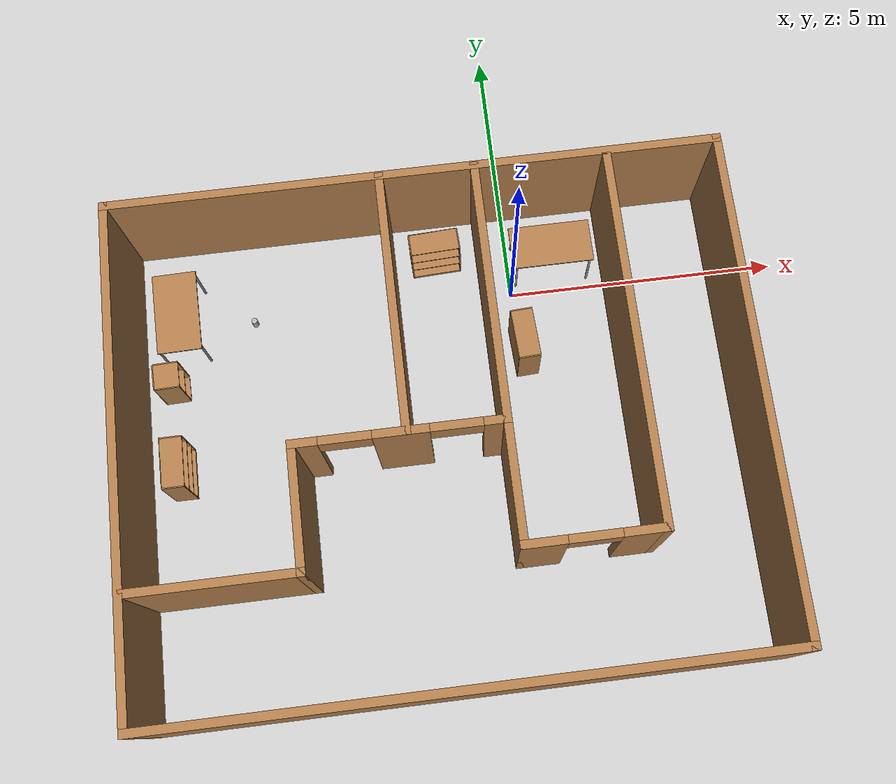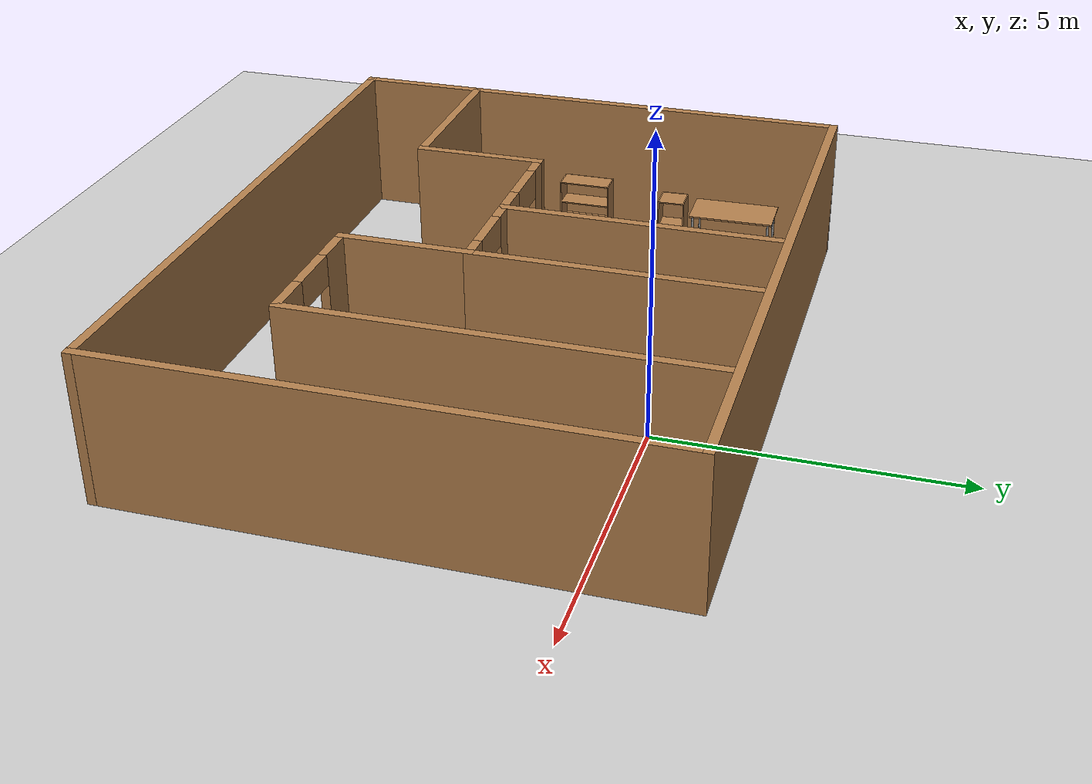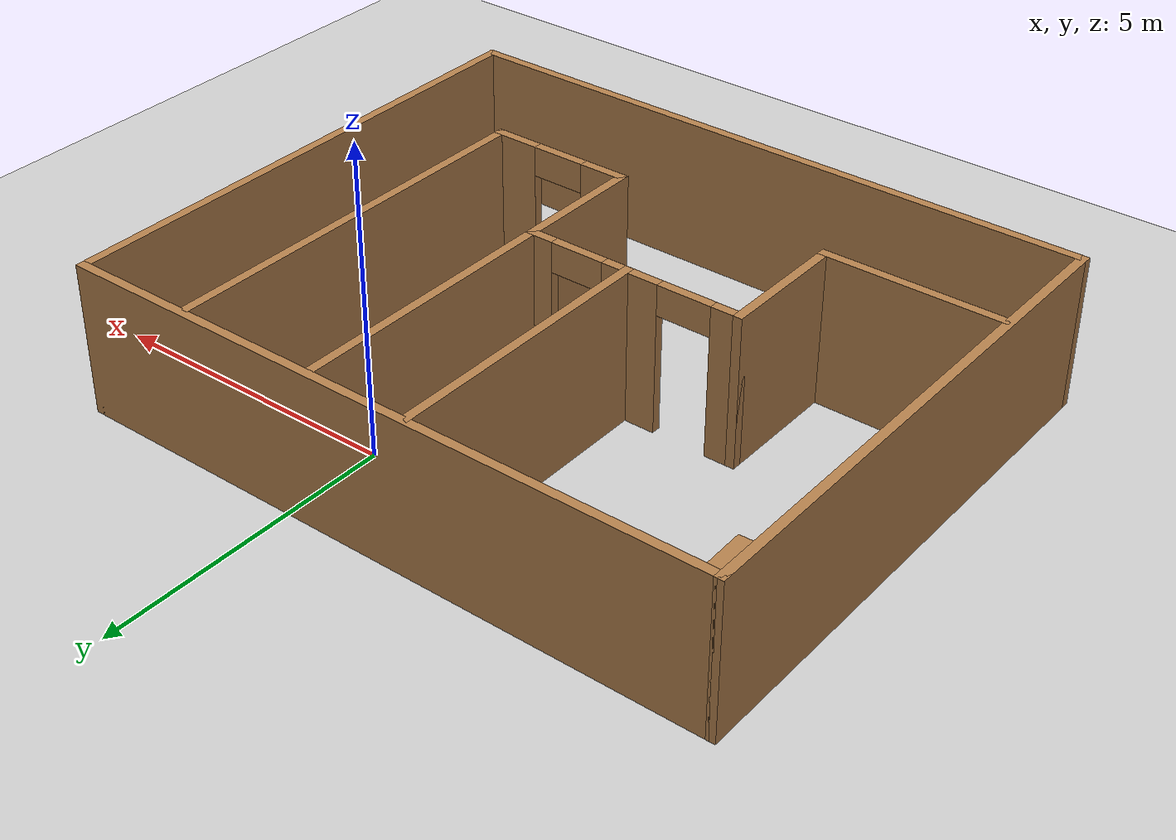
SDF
<sdf version="1.6">
 <world name="default">
  <model name="ground_plane">
   <static>1</static>
   <link name="link">
    <collision name="collision">
     <geometry><plane><normal>0 0 1</normal><size>100 100</size></plane></geometry>
     <surface>
      <contact><collide_bitmask>65535</collide_bitmask></contact>
      <friction><ode><mu>100</mu><mu2>50</mu2></ode></friction>
     </surface>
    </collision>
    <visual name="visual">
     <cast_shadows>0</cast_shadows>
     <geometry><plane><normal>0 0 1</normal><size>100 100</size></plane></geometry>
     <material>
      <script><uri>file://media/materials/scripts/gazebo.material</uri><name>Gazebo/Grey</name></script>
     </material>
    </visual>
   </link>
  </model>
  <model name="Building">
   <pose>-1.60154 -2.77516 0 0 -0 0</pose>
   <link name="Wall_0">
    <collision name="Wall_0_Collision">
     <geometry><box><size>9 0.15 2.5</size></box></geometry>
     <pose>0 0 1.25 0 -0 0</pose>
    </collision>
    <visual name="Wall_0_Visual">
     <pose>0 0 1.25 0 -0 0</pose>
     <geometry><box><size>9 0.15 2.5</size></box></geometry>
     <material>
      <script><uri>file://media/materials/scripts/gazebo.material</uri><name>Gazebo/Wood</name></script>
      <ambient>1 1 1 1</ambient>
     </material>
     <meta><layer>0</layer></meta>
    </visual>
    <pose>-5.425 0 0 0 -0 1.5708</pose>
   </link>
   <link name="Wall_1">
    <collision name="Wall_1_Collision">
     <geometry><box><size>11 0.15 2.5</size></box></geometry>
     <pose>0 0 1.25 0 -0 0</pose>
    </collision>
    <visual name="Wall_1_Visual">
     <pose>0 0 1.25 0 -0 0</pose>
     <geometry><box><size>11 0.15 2.5</size></box></geometry>
     <material>
      <script><uri>file://media/materials/scripts/gazebo.material</uri><name>Gazebo/Wood</name></script>
      <ambient>1 1 1 1</ambient>
     </material>
     <meta><layer>0</layer></meta>
    </visual>
    <pose>0 4.425 0 0 -0 0</pose>
   </link>
   <link name="Wall_10">
    <collision name="Wall_10_Collision">
     <geometry><box><size>4.75 0.15 2.5</size></box></geometry>
     <pose>0 0 1.25 0 -0 0</pose>
    </collision>
    <visual name="Wall_10_Visual">
     <pose>0 0 1.25 0 -0 0</pose>
     <geometry><box><size>4.75 0.15 2.5</size></box></geometry>
     <material>
      <script><uri>file://media/materials/scripts/gazebo.material</uri><name>Gazebo/Wood</name></script>
      <ambient>1 1 1 1</ambient>
     </material>
     <meta><layer>0</layer></meta>
    </visual>
    <pose>-0.594777 2.1053 0 0 -0 1.5708</pose>
   </link>
   <link name="Wall_12">
    <collision name="Wall_12_Collision">
     <geometry><box><size>2.25 0.15 2.5</size></box></geometry>
     <pose>0 0 1.25 0 -0 0</pose>
    </collision>
    <visual name="Wall_12_Visual">
     <pose>0 0 1.25 0 -0 0</pose>
     <geometry><box><size>2.25 0.15 2.5</size></box></geometry>
     <material>
      <script><uri>file://media/materials/scripts/gazebo.material</uri><name>Gazebo/Wood</name></script>
      <ambient>1 1 1 1</ambient>
     </material>
     <meta><layer>0</layer></meta>
    </visual>
    <pose>1.09379 -1.24611 0 0 0 -1.5708</pose>
   </link>
   <link name="Wall_13">
    <pose>2.26879 -2.29611 0 0 -0 0</pose>
    <visual name="Wall_13_Visual_0">
     <pose>-0.855155 0 1.25 0 -0 0</pose>
     <geometry><box><size>0.78969 0.15 2.5</size></box></geometry>
     <material>
      <script><uri>file://media/materials/scripts/gazebo.material</uri><name>Gazebo/Wood</name></script>
      <ambient>1 1 1 1</ambient>
     </material>
     <meta><layer>0</layer></meta>
    </visual>
    <collision name="Wall_13_Collision_0">
     <geometry><box><size>0.78969 0.15 2.5</size></box></geometry>
     <pose>-0.855155 0 1.25 0 -0 0</pose>
    </collision>
    <visual name="Wall_13_Visual_1">
     <pose>0.844845 0 1.25 0 -0 0</pose>
     <geometry><box><size>0.81031 0.15 2.5</size></box></geometry>
     <material>
      <script><uri>file://media/materials/scripts/gazebo.material</uri><name>Gazebo/Wood</name></script>
      <ambient>1 1 1 1</ambient>
     </material>
     <meta><layer>0</layer></meta>
    </visual>
    <collision name="Wall_13_Collision_1">
     <geometry><box><size>0.81031 0.15 2.5</size></box></geometry>
     <pose>0.844845 0 1.25 0 -0 0</pose>
    </collision>
    <visual name="Wall_13_Visual_2">
     <pose>-0.01031 0 2.25 0 -0 0</pose>
     <geometry><box><size>0.9 0.15 0.5</size></box></geometry>
     <material>
      <script><uri>file://media/materials/scripts/gazebo.material</uri><name>Gazebo/Wood</name></script>
      <ambient>1 1 1 1</ambient>
     </material>
     <meta><layer>0</layer></meta>
    </visual>
    <collision name="Wall_13_Collision_2">
     <geometry><box><size>0.9 0.15 0.5</size></box></geometry>
     <pose>-0.01031 0 2.25 0 -0 0</pose>
    </collision>
   </link>
   <link name="Wall_16">
    <collision name="Wall_16_Collision">
     <geometry><box><size>6.75 0.15 2.5</size></box></geometry>
     <pose>0 0 1.25 0 -0 0</pose>
    </collision>
    <visual name="Wall_16_Visual">
     <pose>0 0 1.25 0 -0 0</pose>
     <geometry><box><size>6.75 0.15 2.5</size></box></geometry>
     <material>
      <script><uri>file://media/materials/scripts/gazebo.material</uri><name>Gazebo/Wood</name></script>
      <ambient>1 1 1 1</ambient>
     </material>
     <meta><layer>0</layer></meta>
    </visual>
    <pose>3.44379 1.00389 0 0 -0 1.5708</pose>
   </link>
   <link name="Wall_2">
    <collision name="Wall_2_Collision">
     <geometry><box><size>9 0.15 2.5</size></box></geometry>
     <pose>0 0 1.25 0 -0 0</pose>
    </collision>
    <visual name="Wall_2_Visual">
     <pose>0 0 1.25 0 -0 0</pose>
     <geometry><box><size>9 0.15 2.5</size></box></geometry>
     <material>
      <script><uri>file://media/materials/scripts/gazebo.material</uri><name>Gazebo/Wood</name></script>
      <ambient>1 1 1 1</ambient>
     </material>
     <meta><layer>0</layer></meta>
    </visual>
    <pose>5.425 0 0 0 0 -1.5708</pose>
   </link>
   <link name="Wall_3">
    <collision name="Wall_3_Collision">
     <geometry><box><size>11 0.15 2.5</size></box></geometry>
     <pose>0 0 1.25 0 -0 0</pose>
    </collision>
    <visual name="Wall_3_Visual">
     <pose>0 0 1.25 0 -0 0</pose>
     <geometry><box><size>11 0.15 2.5</size></box></geometry>
     <material>
      <script><uri>file://media/materials/scripts/gazebo.material</uri><name>Gazebo/Wood</name></script>
      <ambient>1 1 1 1</ambient>
     </material>
     <meta><layer>0</layer></meta>
    </visual>
    <pose>0 -4.425 0 0 -0 3.14159</pose>
   </link>
   <link name="Wall_5">
    <collision name="Wall_5_Collision">
     <geometry><box><size>3 0.15 2.5</size></box></geometry>
     <pose>0 0 1.25 0 -0 0</pose>
    </collision>
    <visual name="Wall_5_Visual">
     <pose>0 0 1.25 0 -0 0</pose>
     <geometry><box><size>3 0.15 2.5</size></box></geometry>
     <material>
      <script><uri>file://media/materials/scripts/gazebo.material</uri><name>Gazebo/Wood</name></script>
      <ambient>1 1 1 1</ambient>
     </material>
     <meta><layer>0</layer></meta>
    </visual>
    <pose>-3.93121 -2.29611 0 0 -0 0</pose>
   </link>
   <link name="Wall_6">
    <collision name="Wall_6_Collision">
     <geometry><box><size>2.25 0.15 2.5</size></box></geometry>
     <pose>0 0 1.25 0 -0 0</pose>
    </collision>
    <visual name="Wall_6_Visual">
     <pose>0 0 1.25 0 -0 0</pose>
     <geometry><box><size>2.25 0.15 2.5</size></box></geometry>
     <material>
      <script><uri>file://media/materials/scripts/gazebo.material</uri><name>Gazebo/Wood</name></script>
      <ambient>1 1 1 1</ambient>
     </material>
     <meta><layer>0</layer></meta>
    </visual>
    <pose>-2.50621 -1.24611 0 0 -0 1.5708</pose>
   </link>
   <link name="Wall_7">
    <pose>-0.706213 -0.196114 0 0 -0 0</pose>
    <visual name="Wall_7_Visual_0">
     <pose>-1.61914 0 1.25 0 -0 0</pose>
     <geometry><box><size>0.511721 0.15 2.5</size></box></geometry>
     <material>
      <script><uri>file://media/materials/scripts/gazebo.material</uri><name>Gazebo/Wood</name></script>
      <ambient>1 1 1 1</ambient>
     </material>
     <meta><layer>0</layer></meta>
    </visual>
    <collision name="Wall_7_Collision_0">
     <geometry><box><size>0.511721 0.15 2.5</size></box></geometry>
     <pose>-1.61914 0 1.25 0 -0 0</pose>
    </collision>
    <visual name="Wall_7_Visual_1">
     <pose>0.018958 0 1.25 0 -0 0</pose>
     <geometry><box><size>0.964474 0.15 2.5</size></box></geometry>
     <material>
      <script><uri>file://media/materials/scripts/gazebo.material</uri><name>Gazebo/Wood</name></script>
      <ambient>1 1 1 1</ambient>
     </material>
     <meta><layer>0</layer></meta>
    </visual>
    <collision name="Wall_7_Collision_1">
     <geometry><box><size>0.964474 0.15 2.5</size></box></geometry>
     <pose>0.018958 0 1.25 0 -0 0</pose>
    </collision>
    <visual name="Wall_7_Visual_2">
     <pose>1.6381 0 1.25 0 -0 0</pose>
     <geometry><box><size>0.473805 0.15 2.5</size></box></geometry>
     <material>
      <script><uri>file://media/materials/scripts/gazebo.material</uri><name>Gazebo/Wood</name></script>
      <ambient>1 1 1 1</ambient>
     </material>
     <meta><layer>0</layer></meta>
    </visual>
    <collision name="Wall_7_Collision_2">
     <geometry><box><size>0.473805 0.15 2.5</size></box></geometry>
     <pose>1.6381 0 1.25 0 -0 0</pose>
    </collision>
    <visual name="Wall_7_Visual_3">
     <pose>-0.913279 0 2.25 0 -0 0</pose>
     <geometry><box><size>0.9 0.15 0.5</size></box></geometry>
     <material>
      <script><uri>file://media/materials/scripts/gazebo.material</uri><name>Gazebo/Wood</name></script>
      <ambient>1 1 1 1</ambient>
     </material>
     <meta><layer>0</layer></meta>
    </visual>
    <collision name="Wall_7_Collision_3">
     <geometry><box><size>0.9 0.15 0.5</size></box></geometry>
     <pose>-0.913279 0 2.25 0 -0 0</pose>
    </collision>
    <visual name="Wall_7_Visual_4">
     <pose>0.951195 0 2.25 0 -0 0</pose>
     <geometry><box><size>0.9 0.15 0.5</size></box></geometry>
     <material>
      <script><uri>file://media/materials/scripts/gazebo.material</uri><name>Gazebo/Wood</name></script>
      <ambient>1 1 1 1</ambient>
     </material>
     <meta><layer>0</layer></meta>
    </visual>
    <collision name="Wall_7_Collision_4">
     <geometry><box><size>0.9 0.15 0.5</size></box></geometry>
     <pose>0.951195 0 2.25 0 -0 0</pose>
    </collision>
   </link>
   <link name="Wall_8">
    <collision name="Wall_8_Collision">
     <geometry><box><size>4.75 0.15 2.5</size></box></geometry>
     <pose>0 0 1.25 0 -0 0</pose>
    </collision>
    <visual name="Wall_8_Visual">
     <pose>0 0 1.25 0 -0 0</pose>
     <geometry><box><size>4.75 0.15 2.5</size></box></geometry>
     <material>
      <script><uri>file://media/materials/scripts/gazebo.material</uri><name>Gazebo/Wood</name></script>
      <ambient>1 1 1 1</ambient>
     </material>
     <meta><layer>0</layer></meta>
    </visual>
    <pose>1.09379 2.10389 0 0 -0 1.5708</pose>
   </link>
   <static>1</static>
  </model>
  <model name="table_0">
   <static>1</static>
   <link name="link">
    <collision name="surface">
     <pose>0 0 1 0 -0 0</pose>
     <geometry><box><size>1.5 0.8 0.03</size></box></geometry>
     <surface><friction><ode><mu>0.6</mu><mu2>0.6</mu2></ode></friction></surface>
    </collision>
    <visual name="visual1">
     <pose>0 0 1 0 -0 0</pose>
     <geometry><box><size>1.5 0.8 0.03</size></box></geometry>
     <material>
      <script><uri>file://media/materials/scripts/gazebo.material</uri><name>Gazebo/Wood</name></script>
     </material>
    </visual>
    <collision name="front_left_leg">
     <pose>0.68 0.38 0.5 0 -0 0</pose>
     <geometry><cylinder><radius>0.02</radius><length>1</length></cylinder></geometry>
    </collision>
    <visual name="front_left_leg">
     <pose>0.68 0.38 0.5 0 -0 0</pose>
     <geometry><cylinder><radius>0.02</radius><length>1</length></cylinder></geometry>
     <material>
      <script><uri>file://media/materials/scripts/gazebo.material</uri><name>Gazebo/Grey</name></script>
     </material>
    </visual>
    <collision name="front_right_leg">
     <pose>0.68 -0.38 0.5 0 -0 0</pose>
     <geometry><cylinder><radius>0.02</radius><length>1</length></cylinder></geometry>
    </collision>
    <visual name="front_right_leg">
     <pose>0.68 -0.38 0.5 0 -0 0</pose>
     <geometry><cylinder><radius>0.02</radius><length>1</length></cylinder></geometry>
     <material>
      <script><uri>file://media/materials/scripts/gazebo.material</uri><name>Gazebo/Grey</name></script>
     </material>
    </visual>
    <collision name="back_right_leg">
     <pose>-0.68 -0.38 0.5 0 -0 0</pose>
     <geometry><cylinder><radius>0.02</radius><length>1</length></cylinder></geometry>
    </collision>
    <visual name="back_right_leg">
     <pose>-0.68 -0.38 0.5 0 -0 0</pose>
     <geometry><cylinder><radius>0.02</radius><length>1</length></cylinder></geometry>
     <material>
      <script><uri>file://media/materials/scripts/gazebo.material</uri><name>Gazebo/Grey</name></script>
     </material>
    </visual>
    <collision name="back_left_leg">
     <pose>-0.68 0.38 0.5 0 -0 0</pose>
     <geometry><cylinder><radius>0.02</radius><length>1</length></cylinder></geometry>
    </collision>
    <visual name="back_left_leg">
     <pose>-0.68 0.38 0.5 0 -0 0</pose>
     <geometry><cylinder><radius>0.02</radius><length>1</length></cylinder></geometry>
     <material>
      <script><uri>file://media/materials/scripts/gazebo.material</uri><name>Gazebo/Grey</name></script>
     </material>
    </visual>
   </link>
   <pose>-6.15982 0.084527 0 0 -0 1.59184</pose>
  </model>
  <model name="bookshelf">
   <static>1</static>
   <link name="link">
    <inertial><mass>1</mass></inertial>
    <collision name="back">
     <pose>0 0.005 0.6 0 -0 0</pose>
     <geometry><box><size>0.9 0.01 1.2</size></box></geometry>
    </collision>
    <visual name="visual1">
     <pose>0 0.005 0.6 0 -0 0</pose>
     <geometry><box><size>0.9 0.01 1.2</size></box></geometry>
     <material>
      <script><uri>file://media/materials/scripts/gazebo.material</uri><name>Gazebo/Wood</name></script>
     </material>
    </visual>
    <collision name="left_side">
     <pose>0.45 -0.195 0.6 0 -0 0</pose>
     <geometry><box><size>0.02 0.4 1.2</size></box></geometry>
    </collision>
    <visual name="visual2">
     <pose>0.45 -0.195 0.6 0 -0 0</pose>
     <geometry><box><size>0.02 0.4 1.2</size></box></geometry>
     <material>
      <script><uri>file://media/materials/scripts/gazebo.material</uri><name>Gazebo/Wood</name></script>
     </material>
    </visual>
    <collision name="right_side">
     <pose>-0.45 -0.195 0.6 0 -0 0</pose>
     <geometry><box><size>0.02 0.4 1.2</size></box></geometry>
    </collision>
    <visual name="visual3">
     <pose>-0.45 -0.195 0.6 0 -0 0</pose>
     <geometry><box><size>0.02 0.4 1.2</size></box></geometry>
     <material>
      <script><uri>file://media/materials/scripts/gazebo.material</uri><name>Gazebo/Wood</name></script>
     </material>
    </visual>
    <collision name="bottom">
     <pose>0 -0.195 0.03 0 -0 0</pose>
     <geometry><box><size>0.88 0.4 0.06</size></box></geometry>
    </collision>
    <visual name="visual4">
     <pose>0 -0.195 0.03 0 -0 0</pose>
     <geometry><box><size>0.88 0.4 0.06</size></box></geometry>
     <material>
      <script><uri>file://media/materials/scripts/gazebo.material</uri><name>Gazebo/Wood</name></script>
     </material>
    </visual>
    <collision name="top">
     <pose>0 -0.195 1.19 0 -0 0</pose>
     <geometry><box><size>0.88 0.4 0.02</size></box></geometry>
    </collision>
    <visual name="visual5">
     <pose>0 -0.195 1.19 0 -0 0</pose>
     <geometry><box><size>0.88 0.4 0.02</size></box></geometry>
     <material>
      <script><uri>file://media/materials/scripts/gazebo.material</uri><name>Gazebo/Wood</name></script>
     </material>
    </visual>
    <collision name="low_shelf">
     <pose>0 -0.195 0.43 0 -0 0</pose>
     <geometry><box><size>0.88 0.4 0.02</size></box></geometry>
    </collision>
    <visual name="visual6">
     <pose>0 -0.195 0.43 0 -0 0</pose>
     <geometry><box><size>0.88 0.4 0.02</size></box></geometry>
     <material>
      <script><uri>file://media/materials/scripts/gazebo.material</uri><name>Gazebo/Wood</name></script>
     </material>
    </visual>
    <collision name="high_shelf">
     <pose>0 -0.195 0.8 0 -0 0</pose>
     <geometry><box><size>0.88 0.4 0.02</size></box></geometry>
    </collision>
    <visual name="visual7">
     <pose>0 -0.195 0.8 0 -0 0</pose>
     <geometry><box><size>0.88 0.4 0.02</size></box></geometry>
     <material>
      <script><uri>file://media/materials/scripts/gazebo.material</uri><name>Gazebo/Wood</name></script>
     </material>
    </visual>
   </link>
   <pose>-6.54855 -2.72948 0 0 -0 1.57441</pose>
  </model>
  <model name="cabinet">
   <static>1</static>
   <link name="cabinet_bottom_plate">
    <inertial>
     <pose>0 0 -1 0 -0 0</pose>
     <inertia><ixx>2.05</ixx><ixy>0</ixy><ixz>0</ixz><iyy>2.05</iyy><iyz>0</iyz><izz>2.05</izz></inertia>
     <mass>25</mass>
    </inertial>
    <collision name="cabinet_bottom_plate_geom">
     <pose>0 0 0.01 0 -0 0</pose>
     <geometry><box><size>0.45 0.45 0.02</size></box></geometry>
    </collision>
    <visual name="cabinet_bottom_plate_geom_visual">
     <pose>0 0 0.01 0 -0 0</pose>
     <geometry><box><size>0.45 0.45 0.02</size></box></geometry>
     <material>
      <script><uri>file://media/materials/scripts/gazebo.material</uri><name>Gazebo/Wood</name></script>
     </material>
    </visual>
    <collision name="cabinet_bottom_plate_geom_cabinet_back_plate">
     <pose>0.235 0 0.51 0 -0 0</pose>
     <geometry><box><size>0.02 0.45 1.02</size></box></geometry>
    </collision>
    <visual name="cabinet_bottom_plate_geom_cabinet_back_plate_visual">
     <pose>0.235 0 0.51 0 -0 0</pose>
     <geometry><box><size>0.02 0.45 1.02</size></box></geometry>
     <material>
      <script><uri>file://media/materials/scripts/gazebo.material</uri><name>Gazebo/Wood</name></script>
     </material>
    </visual>
    <collision name="cabinet_bottom_plate_geom_cabinet_left_plate">
     <pose>0 0.235 0.51 0 -0 0</pose>
     <geometry><box><size>0.45 0.02 1.02</size></box></geometry>
    </collision>
    <visual name="cabinet_bottom_plate_geom_cabinet_left_plate_visual">
     <pose>0 0.235 0.51 0 -0 0</pose>
     <geometry><box><size>0.45 0.02 1.02</size></box></geometry>
     <material>
      <script><uri>file://media/materials/scripts/gazebo.material</uri><name>Gazebo/Wood</name></script>
     </material>
    </visual>
    <collision name="cabinet_bottom_plate_geom_cabinet_middle_plate">
     <pose>0 0 0.51 0 -0 0</pose>
     <geometry><box><size>0.45 0.45 0.02</size></box></geometry>
    </collision>
    <visual name="cabinet_bottom_plate_geom_cabinet_middle_plate_visual">
     <pose>0 0 0.51 0 -0 0</pose>
     <geometry><box><size>0.45 0.45 0.02</size></box></geometry>
     <material>
      <script><uri>file://media/materials/scripts/gazebo.material</uri><name>Gazebo/Wood</name></script>
     </material>
    </visual>
    <collision name="cabinet_bottom_plate_geom_cabinet_right_plate">
     <pose>0 -0.235 0.51 0 -0 0</pose>
     <geometry><box><size>0.45 0.02 1.02</size></box></geometry>
    </collision>
    <visual name="cabinet_bottom_plate_geom_cabinet_right_plate_visual">
     <pose>0 -0.235 0.51 0 -0 0</pose>
     <geometry><box><size>0.45 0.02 1.02</size></box></geometry>
     <material>
      <script><uri>file://media/materials/scripts/gazebo.material</uri><name>Gazebo/Wood</name></script>
     </material>
    </visual>
    <collision name="cabinet_bottom_plate_geom_cabinet_top_plate">
     <pose>0 0 1.01 0 -0 0</pose>
     <geometry><box><size>0.45 0.45 0.02</size></box></geometry>
    </collision>
    <visual name="cabinet_bottom_plate_geom_cabinet_top_plate_visual">
     <pose>0 0 1.01 0 -0 0</pose>
     <geometry><box><size>0.45 0.45 0.02</size></box></geometry>
     <material>
      <script><uri>file://media/materials/scripts/gazebo.material</uri><name>Gazebo/Wood</name></script>
     </material>
    </visual>
   </link>
   <pose>-6.41047 -1.09735 0.00285 0 0 -3.11061</pose>
  </model>
  <model name="beer">
   <link name="link">
    <pose>0 0 0.115 0 -0 0</pose>
    <inertial>
     <mass>0.39</mass>
     <inertia><ixx>0.00058</ixx><ixy>0</ixy><ixz>0</ixz><iyy>0.00058</iyy><iyz>0</iyz><izz>0.00019</izz></inertia>
    </inertial>
    <collision name="collision">
     <geometry><cylinder><radius>0.055</radius><length>0.23</length></cylinder></geometry>
    </collision>
    <visual name="visual">
     <geometry><cylinder><radius>0.055</radius><length>0.23</length></cylinder></geometry>
     <material>
      <script>
       <uri>model://beer/materials/scripts</uri>
       <uri>model://beer/materials/textures</uri>
       <name>Beer/Diffuse</name>
      </script>
     </material>
    </visual>
   </link>
   <pose>-4.87793 0.021203 -8e-06 -1e-06 -0 -0.000915</pose>
  </model>
  <model name="bookshelf_0">
   <static>1</static>
   <link name="link">
    <inertial><mass>1</mass></inertial>
    <collision name="back">
     <pose>0 0.005 0.6 0 -0 0</pose>
     <geometry><box><size>0.9 0.01 1.2</size></box></geometry>
    </collision>
    <visual name="visual1">
     <pose>0 0.005 0.6 0 -0 0</pose>
     <geometry><box><size>0.9 0.01 1.2</size></box></geometry>
     <material>
      <script><uri>file://media/materials/scripts/gazebo.material</uri><name>Gazebo/Wood</name></script>
     </material>
    </visual>
    <collision name="left_side">
     <pose>0.45 -0.195 0.6 0 -0 0</pose>
     <geometry><box><size>0.02 0.4 1.2</size></box></geometry>
    </collision>
    <visual name="visual2">
     <pose>0.45 -0.195 0.6 0 -0 0</pose>
     <geometry><box><size>0.02 0.4 1.2</size></box></geometry>
     <material>
      <script><uri>file://media/materials/scripts/gazebo.material</uri><name>Gazebo/Wood</name></script>
     </material>
    </visual>
    <collision name="right_side">
     <pose>-0.45 -0.195 0.6 0 -0 0</pose>
     <geometry><box><size>0.02 0.4 1.2</size></box></geometry>
    </collision>
    <visual name="visual3">
     <pose>-0.45 -0.195 0.6 0 -0 0</pose>
     <geometry><box><size>0.02 0.4 1.2</size></box></geometry>
     <material>
      <script><uri>file://media/materials/scripts/gazebo.material</uri><name>Gazebo/Wood</name></script>
     </material>
    </visual>
    <collision name="bottom">
     <pose>0 -0.195 0.03 0 -0 0</pose>
     <geometry><box><size>0.88 0.4 0.06</size></box></geometry>
    </collision>
    <visual name="visual4">
     <pose>0 -0.195 0.03 0 -0 0</pose>
     <geometry><box><size>0.88 0.4 0.06</size></box></geometry>
     <material>
      <script><uri>file://media/materials/scripts/gazebo.material</uri><name>Gazebo/Wood</name></script>
     </material>
    </visual>
    <collision name="top">
     <pose>0 -0.195 1.19 0 -0 0</pose>
     <geometry><box><size>0.88 0.4 0.02</size></box></geometry>
    </collision>
    <visual name="visual5">
     <pose>0 -0.195 1.19 0 -0 0</pose>
     <geometry><box><size>0.88 0.4 0.02</size></box></geometry>
     <material>
      <script><uri>file://media/materials/scripts/gazebo.material</uri><name>Gazebo/Wood</name></script>
     </material>
    </visual>
    <collision name="low_shelf">
     <pose>0 -0.195 0.43 0 -0 0</pose>
     <geometry><box><size>0.88 0.4 0.02</size></box></geometry>
    </collision>
    <visual name="visual6">
     <pose>0 -0.195 0.43 0 -0 0</pose>
     <geometry><box><size>0.88 0.4 0.02</size></box></geometry>
     <material>
      <script><uri>file://media/materials/scripts/gazebo.material</uri><name>Gazebo/Wood</name></script>
     </material>
    </visual>
    <collision name="high_shelf">
     <pose>0 -0.195 0.8 0 -0 0</pose>
     <geometry><box><size>0.88 0.4 0.02</size></box></geometry>
    </collision>
    <visual name="visual7">
     <pose>0 -0.195 0.8 0 -0 0</pose>
     <geometry><box><size>0.88 0.4 0.02</size></box></geometry>
     <material>
      <script><uri>file://media/materials/scripts/gazebo.material</uri><name>Gazebo/Wood</name></script>
     </material>
    </visual>
   </link>
   <pose>-1.36463 1.00266 0 0 -0 0.04373</pose>
  </model>
  <model name="table_2">
   <static>1</static>
   <link name="link">
    <collision name="surface">
     <pose>0 0 1 0 -0 0</pose>
     <geometry><box><size>1.5 0.8 0.03</size></box></geometry>
     <surface><friction><ode><mu>0.6</mu><mu2>0.6</mu2></ode></friction></surface>
    </collision>
    <visual name="visual1">
     <pose>0 0 1 0 -0 0</pose>
     <geometry><box><size>1.5 0.8 0.03</size></box></geometry>
     <material>
      <script><uri>file://media/materials/scripts/gazebo.material</uri><name>Gazebo/Wood</name></script>
     </material>
    </visual>
    <collision name="front_left_leg">
     <pose>0.68 0.38 0.5 0 -0 0</pose>
     <geometry><cylinder><radius>0.02</radius><length>1</length></cylinder></geometry>
    </collision>
    <visual name="front_left_leg">
     <pose>0.68 0.38 0.5 0 -0 0</pose>
     <geometry><cylinder><radius>0.02</radius><length>1</length></cylinder></geometry>
     <material>
      <script><uri>file://media/materials/scripts/gazebo.material</uri><name>Gazebo/Grey</name></script>
     </material>
    </visual>
    <collision name="front_right_leg">
     <pose>0.68 -0.38 0.5 0 -0 0</pose>
     <geometry><cylinder><radius>0.02</radius><length>1</length></cylinder></geometry>
    </collision>
    <visual name="front_right_leg">
     <pose>0.68 -0.38 0.5 0 -0 0</pose>
     <geometry><cylinder><radius>0.02</radius><length>1</length></cylinder></geometry>
     <material>
      <script><uri>file://media/materials/scripts/gazebo.material</uri><name>Gazebo/Grey</name></script>
     </material>
    </visual>
    <collision name="back_right_leg">
     <pose>-0.68 -0.38 0.5 0 -0 0</pose>
     <geometry><cylinder><radius>0.02</radius><length>1</length></cylinder></geometry>
    </collision>
    <visual name="back_right_leg">
     <pose>-0.68 -0.38 0.5 0 -0 0</pose>
     <geometry><cylinder><radius>0.02</radius><length>1</length></cylinder></geometry>
     <material>
      <script><uri>file://media/materials/scripts/gazebo.material</uri><name>Gazebo/Grey</name></script>
     </material>
    </visual>
    <collision name="back_left_leg">
     <pose>-0.68 0.38 0.5 0 -0 0</pose>
     <geometry><cylinder><radius>0.02</radius><length>1</length></cylinder></geometry>
    </collision>
    <visual name="back_left_leg">
     <pose>-0.68 0.38 0.5 0 -0 0</pose>
     <geometry><cylinder><radius>0.02</radius><length>1</length></cylinder></geometry>
     <material>
      <script><uri>file://media/materials/scripts/gazebo.material</uri><name>Gazebo/Grey</name></script>
     </material>
    </visual>
   </link>
   <pose>0.79209 0.577353 0 0 -0 0</pose>
  </model>
  <model name="bookshelf_1">
   <static>1</static>
   <link name="link">
    <inertial><mass>1</mass></inertial>
    <collision name="back">
     <pose>0 0.005 0.6 0 -0 0</pose>
     <geometry><box><size>0.9 0.01 1.2</size></box></geometry>
    </collision>
    <visual name="visual1">
     <pose>0 0.005 0.6 0 -0 0</pose>
     <geometry><box><size>0.9 0.01 1.2</size></box></geometry>
     <material>
      <script><uri>file://media/materials/scripts/gazebo.material</uri><name>Gazebo/Wood</name></script>
     </material>
    </visual>
    <collision name="left_side">
     <pose>0.45 -0.195 0.6 0 -0 0</pose>
     <geometry><box><size>0.02 0.4 1.2</size></box></geometry>
    </collision>
    <visual name="visual2">
     <pose>0.45 -0.195 0.6 0 -0 0</pose>
     <geometry><box><size>0.02 0.4 1.2</size></box></geometry>
     <material>
      <script><uri>file://media/materials/scripts/gazebo.material</uri><name>Gazebo/Wood</name></script>
     </material>
    </visual>
    <collision name="right_side">
     <pose>-0.45 -0.195 0.6 0 -0 0</pose>
     <geometry><box><size>0.02 0.4 1.2</size></box></geometry>
    </collision>
    <visual name="visual3">
     <pose>-0.45 -0.195 0.6 0 -0 0</pose>
     <geometry><box><size>0.02 0.4 1.2</size></box></geometry>
     <material>
      <script><uri>file://media/materials/scripts/gazebo.material</uri><name>Gazebo/Wood</name></script>
     </material>
    </visual>
    <collision name="bottom">
     <pose>0 -0.195 0.03 0 -0 0</pose>
     <geometry><box><size>0.88 0.4 0.06</size></box></geometry>
    </collision>
    <visual name="visual4">
     <pose>0 -0.195 0.03 0 -0 0</pose>
     <geometry><box><size>0.88 0.4 0.06</size></box></geometry>
     <material>
      <script><uri>file://media/materials/scripts/gazebo.material</uri><name>Gazebo/Wood</name></script>
     </material>
    </visual>
    <collision name="top">
     <pose>0 -0.195 1.19 0 -0 0</pose>
     <geometry><box><size>0.88 0.4 0.02</size></box></geometry>
    </collision>
    <visual name="visual5">
     <pose>0 -0.195 1.19 0 -0 0</pose>
     <geometry><box><size>0.88 0.4 0.02</size></box></geometry>
     <material>
      <script><uri>file://media/materials/scripts/gazebo.material</uri><name>Gazebo/Wood</name></script>
     </material>
    </visual>
    <collision name="low_shelf">
     <pose>0 -0.195 0.43 0 -0 0</pose>
     <geometry><box><size>0.88 0.4 0.02</size></box></geometry>
    </collision>
    <visual name="visual6">
     <pose>0 -0.195 0.43 0 -0 0</pose>
     <geometry><box><size>0.88 0.4 0.02</size></box></geometry>
     <material>
      <script><uri>file://media/materials/scripts/gazebo.material</uri><name>Gazebo/Wood</name></script>
     </material>
    </visual>
    <collision name="high_shelf">
     <pose>0 -0.195 0.8 0 -0 0</pose>
     <geometry><box><size>0.88 0.4 0.02</size></box></geometry>
    </collision>
    <visual name="visual7">
     <pose>0 -0.195 0.8 0 -0 0</pose>
     <geometry><box><size>0.88 0.4 0.02</size></box></geometry>
     <material>
      <script><uri>file://media/materials/scripts/gazebo.material</uri><name>Gazebo/Wood</name></script>
     </material>
    </visual>
   </link>
   <pose>-0.106741 -1.14104 0 0 -0 1.62265</pose>
  </model>
 </world>
</sdf>
